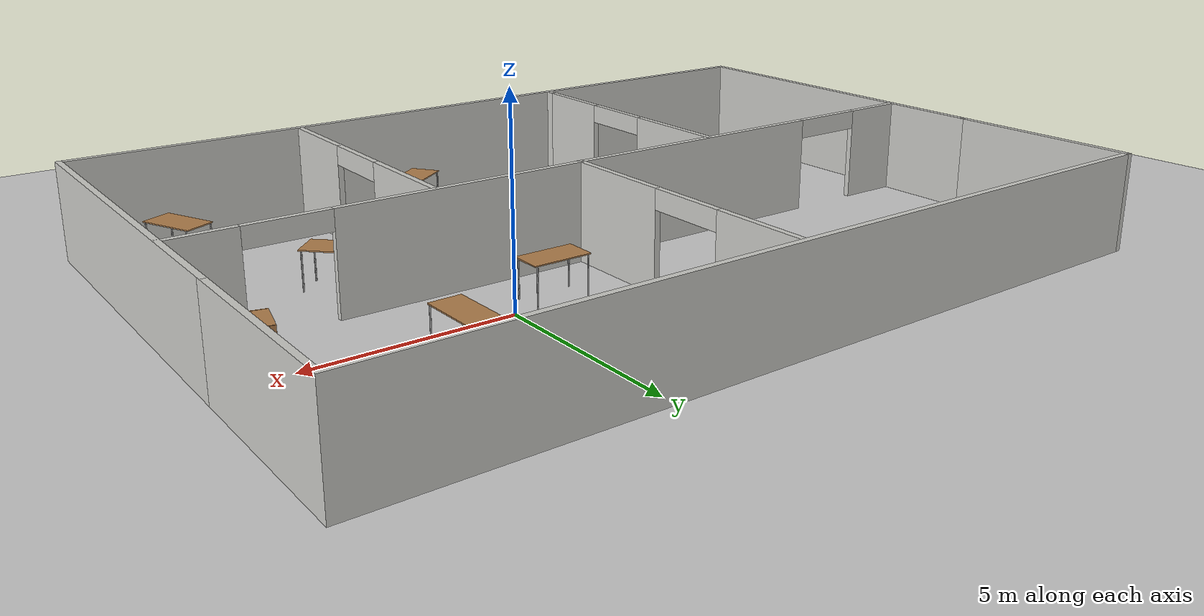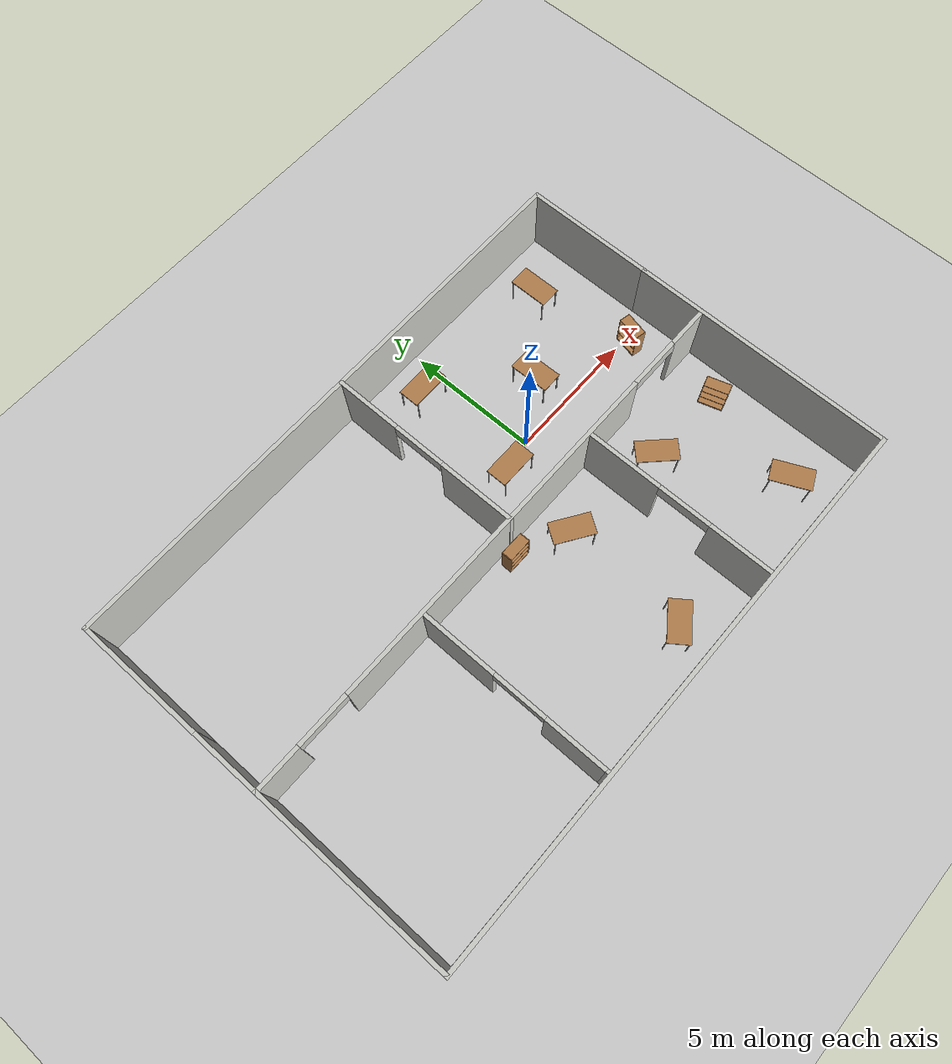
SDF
<sdf version="1.6">
 <world name="default">
  <model name="ground_plane">
   <static>1</static>
   <link name="link">
    <collision name="collision">
     <geometry><plane><normal>0 0 1</normal><size>100 100</size></plane></geometry>
     <surface>
      <contact><collide_bitmask>65535</collide_bitmask></contact>
      <friction><ode><mu>100</mu><mu2>50</mu2></ode></friction>
     </surface>
    </collision>
    <visual name="visual">
     <cast_shadows>0</cast_shadows>
     <geometry><plane><normal>0 0 1</normal><size>100 100</size></plane></geometry>
     <material>
      <script><uri>file://media/materials/scripts/gazebo.material</uri><name>Gazebo/Grey</name></script>
     </material>
    </visual>
   </link>
  </model>
  <model name="myworld">
   <pose>-3.80352 -2.02959 0 0 -0 0</pose>
   <link name="Wall_0">
    <collision name="Wall_0_Collision">
     <geometry><box><size>10 0.15 2.5</size></box></geometry>
     <pose>0 0 1.25 0 -0 0</pose>
    </collision>
    <visual name="Wall_0_Visual">
     <pose>0 0 1.25 0 -0 0</pose>
     <geometry><box><size>10 0.15 2.5</size></box></geometry>
     <material>
      <script><uri>file://media/materials/scripts/gazebo.material</uri><name>Gazebo/CeilingTiled</name></script>
      <ambient>1 1 0 1</ambient>
     </material>
     <meta><layer>0</layer></meta>
    </visual>
    <pose>-10.5499 -2.425 0 0 0 -1.5708</pose>
   </link>
   <link name="Wall_1">
    <collision name="Wall_1_Collision">
     <geometry><box><size>21.25 0.15 2.5</size></box></geometry>
     <pose>0 0 1.25 0 -0 0</pose>
    </collision>
    <visual name="Wall_1_Visual">
     <pose>0 0 1.25 0 -0 0</pose>
     <geometry><box><size>21.25 0.15 2.5</size></box></geometry>
     <material>
      <script><uri>file://media/materials/scripts/gazebo.material</uri><name>Gazebo/CeilingTiled</name></script>
      <ambient>0.333333 1 0 1</ambient>
     </material>
     <meta><layer>0</layer></meta>
    </visual>
    <pose>6.1e-05 -7.35 0 0 -0 0</pose>
   </link>
   <link name="Wall_16">
    <pose>-6.2e-05 0.001581 0 0 -0 0</pose>
    <visual name="Wall_16_Visual_0">
     <pose>-9.72617 0 1.25 0 -0 0</pose>
     <geometry><box><size>1.79767 0.15 2.5</size></box></geometry>
     <material>
      <script><uri>file://media/materials/scripts/gazebo.material</uri><name>Gazebo/CeilingTiled</name></script>
      <ambient>0 0 0 1</ambient>
     </material>
     <meta><layer>0</layer></meta>
    </visual>
    <collision name="Wall_16_Collision_0">
     <geometry><box><size>1.79767 0.15 2.5</size></box></geometry>
     <pose>-9.72617 0 1.25 0 -0 0</pose>
    </collision>
    <visual name="Wall_16_Visual_1">
     <pose>0.056227 0 1.25 0 -0 0</pose>
     <geometry><box><size>13.7671 0.15 2.5</size></box></geometry>
     <material>
      <script><uri>file://media/materials/scripts/gazebo.material</uri><name>Gazebo/CeilingTiled</name></script>
      <ambient>0 0 0 1</ambient>
     </material>
     <meta><layer>0</layer></meta>
    </visual>
    <collision name="Wall_16_Collision_1">
     <geometry><box><size>13.7671 0.15 2.5</size></box></geometry>
     <pose>0.056227 0 1.25 0 -0 0</pose>
    </collision>
    <visual name="Wall_16_Visual_2">
     <pose>9.78239 0 1.25 0 -0 0</pose>
     <geometry><box><size>1.68521 0.15 2.5</size></box></geometry>
     <material>
      <script><uri>file://media/materials/scripts/gazebo.material</uri><name>Gazebo/CeilingTiled</name></script>
      <ambient>0 0 0 1</ambient>
     </material>
     <meta><layer>0</layer></meta>
    </visual>
    <collision name="Wall_16_Collision_2">
     <geometry><box><size>1.68521 0.15 2.5</size></box></geometry>
     <pose>9.78239 0 1.25 0 -0 0</pose>
    </collision>
    <visual name="Wall_16_Visual_3">
     <pose>-7.82733 0 2.25 0 -0 0</pose>
     <geometry><box><size>2 0.15 0.5</size></box></geometry>
     <material>
      <script><uri>file://media/materials/scripts/gazebo.material</uri><name>Gazebo/CeilingTiled</name></script>
      <ambient>0 0 0 1</ambient>
     </material>
     <meta><layer>0</layer></meta>
    </visual>
    <collision name="Wall_16_Collision_3">
     <geometry><box><size>2 0.15 0.5</size></box></geometry>
     <pose>-7.82733 0 2.25 0 -0 0</pose>
    </collision>
    <visual name="Wall_16_Visual_4">
     <pose>7.93979 0 2.25 0 -0 0</pose>
     <geometry><box><size>2 0.15 0.5</size></box></geometry>
     <material>
      <script><uri>file://media/materials/scripts/gazebo.material</uri><name>Gazebo/CeilingTiled</name></script>
      <ambient>0 0 0 1</ambient>
     </material>
     <meta><layer>0</layer></meta>
    </visual>
    <collision name="Wall_16_Collision_4">
     <geometry><box><size>2 0.15 0.5</size></box></geometry>
     <pose>7.93979 0 2.25 0 -0 0</pose>
    </collision>
   </link>
   <link name="Wall_2">
    <collision name="Wall_2_Collision">
     <geometry><box><size>10 0.15 2.5</size></box></geometry>
     <pose>0 0 1.25 0 -0 0</pose>
    </collision>
    <visual name="Wall_2_Visual">
     <pose>0 0 1.25 0 -0 0</pose>
     <geometry><box><size>10 0.15 2.5</size></box></geometry>
     <material>
      <script><uri>file://media/materials/scripts/gazebo.material</uri><name>Gazebo/CeilingTiled</name></script>
      <ambient>0.333333 0.333333 1 1</ambient>
     </material>
     <meta><layer>0</layer></meta>
    </visual>
    <pose>10.5501 -2.425 0 0 -0 1.5708</pose>
   </link>
   <link name="Wall_25">
    <pose>-3.5035 -3.55368 0 0 0 -1.5708</pose>
    <visual name="Wall_25_Visual_0">
     <pose>-2.14633 0 1.25 0 -0 0</pose>
     <geometry><box><size>2.95734 0.15 2.5</size></box></geometry>
     <material>
      <script><uri>file://media/materials/scripts/gazebo.material</uri><name>Gazebo/CeilingTiled</name></script>
      <ambient>0.333333 0 0 1</ambient>
     </material>
     <meta><layer>0</layer></meta>
    </visual>
    <collision name="Wall_25_Collision_0">
     <geometry><box><size>2.95734 0.15 2.5</size></box></geometry>
     <pose>-2.14633 0 1.25 0 -0 0</pose>
    </collision>
    <visual name="Wall_25_Visual_1">
     <pose>2.47867 0 1.25 0 -0 0</pose>
     <geometry><box><size>2.29266 0.15 2.5</size></box></geometry>
     <material>
      <script><uri>file://media/materials/scripts/gazebo.material</uri><name>Gazebo/CeilingTiled</name></script>
      <ambient>0.333333 0 0 1</ambient>
     </material>
     <meta><layer>0</layer></meta>
    </visual>
    <collision name="Wall_25_Collision_1">
     <geometry><box><size>2.29266 0.15 2.5</size></box></geometry>
     <pose>2.47867 0 1.25 0 -0 0</pose>
    </collision>
    <visual name="Wall_25_Visual_2">
     <pose>0.332335 0 2.25 0 -0 0</pose>
     <geometry><box><size>2 0.15 0.5</size></box></geometry>
     <material>
      <script><uri>file://media/materials/scripts/gazebo.material</uri><name>Gazebo/CeilingTiled</name></script>
      <ambient>0.333333 0 0 1</ambient>
     </material>
     <meta><layer>0</layer></meta>
    </visual>
    <collision name="Wall_25_Collision_2">
     <geometry><box><size>2 0.15 0.5</size></box></geometry>
     <pose>0.332335 0 2.25 0 -0 0</pose>
    </collision>
   </link>
   <link name="Wall_27">
    <pose>4.49862 -3.64673 0 0 0 -1.5708</pose>
    <visual name="Wall_27_Visual_0">
     <pose>-2.19286 0 1.25 0 -0 0</pose>
     <geometry><box><size>2.86429 0.15 2.5</size></box></geometry>
     <material>
      <script><uri>file://media/materials/scripts/gazebo.material</uri><name>Gazebo/CeilingTiled</name></script>
      <ambient>0.666667 0 0.498039 1</ambient>
     </material>
     <meta><layer>0</layer></meta>
    </visual>
    <collision name="Wall_27_Collision_0">
     <geometry><box><size>2.86429 0.15 2.5</size></box></geometry>
     <pose>-2.19286 0 1.25 0 -0 0</pose>
    </collision>
    <visual name="Wall_27_Visual_1">
     <pose>2.43214 0 1.25 0 -0 0</pose>
     <geometry><box><size>2.38571 0.15 2.5</size></box></geometry>
     <material>
      <script><uri>file://media/materials/scripts/gazebo.material</uri><name>Gazebo/CeilingTiled</name></script>
      <ambient>0.666667 0 0.498039 1</ambient>
     </material>
     <meta><layer>0</layer></meta>
    </visual>
    <collision name="Wall_27_Collision_1">
     <geometry><box><size>2.38571 0.15 2.5</size></box></geometry>
     <pose>2.43214 0 1.25 0 -0 0</pose>
    </collision>
    <visual name="Wall_27_Visual_2">
     <pose>0.239287 0 2.25 0 -0 0</pose>
     <geometry><box><size>2 0.15 0.5</size></box></geometry>
     <material>
      <script><uri>file://media/materials/scripts/gazebo.material</uri><name>Gazebo/CeilingTiled</name></script>
      <ambient>0.666667 0 0.498039 1</ambient>
     </material>
     <meta><layer>0</layer></meta>
    </visual>
    <collision name="Wall_27_Collision_2">
     <geometry><box><size>2 0.15 0.5</size></box></geometry>
     <pose>0.239287 0 2.25 0 -0 0</pose>
    </collision>
   </link>
   <link name="Wall_34">
    <pose>0.552412 3.6586 0 0 -0 1.5708</pose>
    <visual name="Wall_34_Visual_0">
     <pose>-2.27068 0 1.25 0 -0 0</pose>
     <geometry><box><size>2.95863 0.15 2.5</size></box></geometry>
     <material>
      <script><uri>file://media/materials/scripts/gazebo.material</uri><name>Gazebo/CeilingTiled</name></script>
      <ambient>0 0.666667 0.498039 1</ambient>
     </material>
     <meta><layer>0</layer></meta>
    </visual>
    <collision name="Wall_34_Collision_0">
     <geometry><box><size>2.95863 0.15 2.5</size></box></geometry>
     <pose>-2.27068 0 1.25 0 -0 0</pose>
    </collision>
    <visual name="Wall_34_Visual_1">
     <pose>2.47932 0 1.25 0 -0 0</pose>
     <geometry><box><size>2.54137 0.15 2.5</size></box></geometry>
     <material>
      <script><uri>file://media/materials/scripts/gazebo.material</uri><name>Gazebo/CeilingTiled</name></script>
      <ambient>0 0.666667 0.498039 1</ambient>
     </material>
     <meta><layer>0</layer></meta>
    </visual>
    <collision name="Wall_34_Collision_1">
     <geometry><box><size>2.54137 0.15 2.5</size></box></geometry>
     <pose>2.47932 0 1.25 0 -0 0</pose>
    </collision>
    <visual name="Wall_34_Visual_2">
     <pose>0.208629 0 2.25 0 -0 0</pose>
     <geometry><box><size>2 0.15 0.5</size></box></geometry>
     <material>
      <script><uri>file://media/materials/scripts/gazebo.material</uri><name>Gazebo/CeilingTiled</name></script>
      <ambient>0 0.666667 0.498039 1</ambient>
     </material>
     <meta><layer>0</layer></meta>
    </visual>
    <collision name="Wall_34_Collision_2">
     <geometry><box><size>2 0.15 0.5</size></box></geometry>
     <pose>0.208629 0 2.25 0 -0 0</pose>
    </collision>
   </link>
   <link name="Wall_36">
    <collision name="Wall_36_Collision">
     <geometry><box><size>0.25 0.15 2.5</size></box></geometry>
     <pose>0 0 1.25 0 -0 0</pose>
    </collision>
    <visual name="Wall_36_Visual">
     <pose>0 0 1.25 0 -0 0</pose>
     <geometry><box><size>0.25 0.15 2.5</size></box></geometry>
     <material>
      <script><uri>file://media/materials/scripts/gazebo.material</uri><name>Gazebo/CeilingTiled</name></script>
      <ambient>1 1 1 1</ambient>
     </material>
     <meta><layer>0</layer></meta>
    </visual>
    <pose>-3.5035 -7.15368 0 0 0 -1.5708</pose>
   </link>
   <link name="Wall_5">
    <collision name="Wall_5_Collision">
     <geometry><box><size>5 0.15 2.5</size></box></geometry>
     <pose>0 0 1.25 0 -0 0</pose>
    </collision>
    <visual name="Wall_5_Visual">
     <pose>0 0 1.25 0 -0 0</pose>
     <geometry><box><size>5 0.15 2.5</size></box></geometry>
     <material>
      <script><uri>file://media/materials/scripts/gazebo.material</uri><name>Gazebo/CeilingTiled</name></script>
      <ambient>1 1 0 1</ambient>
     </material>
     <meta><layer>0</layer></meta>
    </visual>
    <pose>-10.5499 4.925 0 0 -0 1.5708</pose>
   </link>
   <link name="Wall_6">
    <collision name="Wall_6_Collision">
     <geometry><box><size>21.25 0.15 2.5</size></box></geometry>
     <pose>0 0 1.25 0 -0 0</pose>
    </collision>
    <visual name="Wall_6_Visual">
     <pose>0 0 1.25 0 -0 0</pose>
     <geometry><box><size>21.25 0.15 2.5</size></box></geometry>
     <material>
      <script><uri>file://media/materials/scripts/gazebo.material</uri><name>Gazebo/CeilingTiled</name></script>
      <ambient>1 0 0 1</ambient>
     </material>
     <meta><layer>0</layer></meta>
    </visual>
    <pose>6.1e-05 7.35 0 0 -0 0</pose>
   </link>
   <link name="Wall_7">
    <collision name="Wall_7_Collision">
     <geometry><box><size>5 0.15 2.5</size></box></geometry>
     <pose>0 0 1.25 0 -0 0</pose>
    </collision>
    <visual name="Wall_7_Visual">
     <pose>0 0 1.25 0 -0 0</pose>
     <geometry><box><size>5 0.15 2.5</size></box></geometry>
     <material>
      <script><uri>file://media/materials/scripts/gazebo.material</uri><name>Gazebo/CeilingTiled</name></script>
      <ambient>0.333333 0.333333 1 1</ambient>
     </material>
     <meta><layer>0</layer></meta>
    </visual>
    <pose>10.5501 4.925 0 0 0 -1.5708</pose>
   </link>
   <static>1</static>
  </model>
  <model name="table_3">
   <static>1</static>
   <link name="link">
    <collision name="surface">
     <pose>0 0 1 0 -0 0</pose>
     <geometry><box><size>1.5 0.8 0.03</size></box></geometry>
     <surface><friction><ode><mu>0.6</mu><mu2>0.6</mu2></ode></friction></surface>
    </collision>
    <visual name="visual1">
     <pose>0 0 1 0 -0 0</pose>
     <geometry><box><size>1.5 0.8 0.03</size></box></geometry>
     <material>
      <script><uri>file://media/materials/scripts/gazebo.material</uri><name>Gazebo/Wood</name></script>
     </material>
    </visual>
    <collision name="front_left_leg">
     <pose>0.68 0.38 0.5 0 -0 0</pose>
     <geometry><cylinder><radius>0.02</radius><length>1</length></cylinder></geometry>
    </collision>
    <visual name="front_left_leg">
     <pose>0.68 0.38 0.5 0 -0 0</pose>
     <geometry><cylinder><radius>0.02</radius><length>1</length></cylinder></geometry>
     <material>
      <script><uri>file://media/materials/scripts/gazebo.material</uri><name>Gazebo/Grey</name></script>
     </material>
    </visual>
    <collision name="front_right_leg">
     <pose>0.68 -0.38 0.5 0 -0 0</pose>
     <geometry><cylinder><radius>0.02</radius><length>1</length></cylinder></geometry>
    </collision>
    <visual name="front_right_leg">
     <pose>0.68 -0.38 0.5 0 -0 0</pose>
     <geometry><cylinder><radius>0.02</radius><length>1</length></cylinder></geometry>
     <material>
      <script><uri>file://media/materials/scripts/gazebo.material</uri><name>Gazebo/Grey</name></script>
     </material>
    </visual>
    <collision name="back_right_leg">
     <pose>-0.68 -0.38 0.5 0 -0 0</pose>
     <geometry><cylinder><radius>0.02</radius><length>1</length></cylinder></geometry>
    </collision>
    <visual name="back_right_leg">
     <pose>-0.68 -0.38 0.5 0 -0 0</pose>
     <geometry><cylinder><radius>0.02</radius><length>1</length></cylinder></geometry>
     <material>
      <script><uri>file://media/materials/scripts/gazebo.material</uri><name>Gazebo/Grey</name></script>
     </material>
    </visual>
    <collision name="back_left_leg">
     <pose>-0.68 0.38 0.5 0 -0 0</pose>
     <geometry><cylinder><radius>0.02</radius><length>1</length></cylinder></geometry>
    </collision>
    <visual name="back_left_leg">
     <pose>-0.68 0.38 0.5 0 -0 0</pose>
     <geometry><cylinder><radius>0.02</radius><length>1</length></cylinder></geometry>
     <material>
      <script><uri>file://media/materials/scripts/gazebo.material</uri><name>Gazebo/Grey</name></script>
     </material>
    </visual>
   </link>
   <pose>4.58009 3.52405 0 0 0 -1.56695</pose>
  </model>
  <model name="table_4">
   <static>1</static>
   <link name="link">
    <collision name="surface">
     <pose>0 0 1 0 -0 0</pose>
     <geometry><box><size>1.5 0.8 0.03</size></box></geometry>
     <surface><friction><ode><mu>0.6</mu><mu2>0.6</mu2></ode></friction></surface>
    </collision>
    <visual name="visual1">
     <pose>0 0 1 0 -0 0</pose>
     <geometry><box><size>1.5 0.8 0.03</size></box></geometry>
     <material>
      <script><uri>file://media/materials/scripts/gazebo.material</uri><name>Gazebo/Wood</name></script>
     </material>
    </visual>
    <collision name="front_left_leg">
     <pose>0.68 0.38 0.5 0 -0 0</pose>
     <geometry><cylinder><radius>0.02</radius><length>1</length></cylinder></geometry>
    </collision>
    <visual name="front_left_leg">
     <pose>0.68 0.38 0.5 0 -0 0</pose>
     <geometry><cylinder><radius>0.02</radius><length>1</length></cylinder></geometry>
     <material>
      <script><uri>file://media/materials/scripts/gazebo.material</uri><name>Gazebo/Grey</name></script>
     </material>
    </visual>
    <collision name="front_right_leg">
     <pose>0.68 -0.38 0.5 0 -0 0</pose>
     <geometry><cylinder><radius>0.02</radius><length>1</length></cylinder></geometry>
    </collision>
    <visual name="front_right_leg">
     <pose>0.68 -0.38 0.5 0 -0 0</pose>
     <geometry><cylinder><radius>0.02</radius><length>1</length></cylinder></geometry>
     <material>
      <script><uri>file://media/materials/scripts/gazebo.material</uri><name>Gazebo/Grey</name></script>
     </material>
    </visual>
    <collision name="back_right_leg">
     <pose>-0.68 -0.38 0.5 0 -0 0</pose>
     <geometry><cylinder><radius>0.02</radius><length>1</length></cylinder></geometry>
    </collision>
    <visual name="back_right_leg">
     <pose>-0.68 -0.38 0.5 0 -0 0</pose>
     <geometry><cylinder><radius>0.02</radius><length>1</length></cylinder></geometry>
     <material>
      <script><uri>file://media/materials/scripts/gazebo.material</uri><name>Gazebo/Grey</name></script>
     </material>
    </visual>
    <collision name="back_left_leg">
     <pose>-0.68 0.38 0.5 0 -0 0</pose>
     <geometry><cylinder><radius>0.02</radius><length>1</length></cylinder></geometry>
    </collision>
    <visual name="back_left_leg">
     <pose>-0.68 0.38 0.5 0 -0 0</pose>
     <geometry><cylinder><radius>0.02</radius><length>1</length></cylinder></geometry>
     <material>
      <script><uri>file://media/materials/scripts/gazebo.material</uri><name>Gazebo/Grey</name></script>
     </material>
    </visual>
   </link>
   <pose>1.974 1.27026 0 0 0 -1.54787</pose>
  </model>
  <model name="table_5">
   <static>1</static>
   <link name="link">
    <collision name="surface">
     <pose>0 0 1 0 -0 0</pose>
     <geometry><box><size>1.5 0.8 0.03</size></box></geometry>
     <surface><friction><ode><mu>0.6</mu><mu2>0.6</mu2></ode></friction></surface>
    </collision>
    <visual name="visual1">
     <pose>0 0 1 0 -0 0</pose>
     <geometry><box><size>1.5 0.8 0.03</size></box></geometry>
     <material>
      <script><uri>file://media/materials/scripts/gazebo.material</uri><name>Gazebo/Wood</name></script>
     </material>
    </visual>
    <collision name="front_left_leg">
     <pose>0.68 0.38 0.5 0 -0 0</pose>
     <geometry><cylinder><radius>0.02</radius><length>1</length></cylinder></geometry>
    </collision>
    <visual name="front_left_leg">
     <pose>0.68 0.38 0.5 0 -0 0</pose>
     <geometry><cylinder><radius>0.02</radius><length>1</length></cylinder></geometry>
     <material>
      <script><uri>file://media/materials/scripts/gazebo.material</uri><name>Gazebo/Grey</name></script>
     </material>
    </visual>
    <collision name="front_right_leg">
     <pose>0.68 -0.38 0.5 0 -0 0</pose>
     <geometry><cylinder><radius>0.02</radius><length>1</length></cylinder></geometry>
    </collision>
    <visual name="front_right_leg">
     <pose>0.68 -0.38 0.5 0 -0 0</pose>
     <geometry><cylinder><radius>0.02</radius><length>1</length></cylinder></geometry>
     <material>
      <script><uri>file://media/materials/scripts/gazebo.material</uri><name>Gazebo/Grey</name></script>
     </material>
    </visual>
    <collision name="back_right_leg">
     <pose>-0.68 -0.38 0.5 0 -0 0</pose>
     <geometry><cylinder><radius>0.02</radius><length>1</length></cylinder></geometry>
    </collision>
    <visual name="back_right_leg">
     <pose>-0.68 -0.38 0.5 0 -0 0</pose>
     <geometry><cylinder><radius>0.02</radius><length>1</length></cylinder></geometry>
     <material>
      <script><uri>file://media/materials/scripts/gazebo.material</uri><name>Gazebo/Grey</name></script>
     </material>
    </visual>
    <collision name="back_left_leg">
     <pose>-0.68 0.38 0.5 0 -0 0</pose>
     <geometry><cylinder><radius>0.02</radius><length>1</length></cylinder></geometry>
    </collision>
    <visual name="back_left_leg">
     <pose>-0.68 0.38 0.5 0 -0 0</pose>
     <geometry><cylinder><radius>0.02</radius><length>1</length></cylinder></geometry>
     <material>
      <script><uri>file://media/materials/scripts/gazebo.material</uri><name>Gazebo/Grey</name></script>
     </material>
    </visual>
   </link>
   <pose>-1.27098 -0.368858 0 0 -0 0</pose>
  </model>
  <model name="table_6">
   <static>1</static>
   <link name="link">
    <collision name="surface">
     <pose>0 0 1 0 -0 0</pose>
     <geometry><box><size>1.5 0.8 0.03</size></box></geometry>
     <surface><friction><ode><mu>0.6</mu><mu2>0.6</mu2></ode></friction></surface>
    </collision>
    <visual name="visual1">
     <pose>0 0 1 0 -0 0</pose>
     <geometry><box><size>1.5 0.8 0.03</size></box></geometry>
     <material>
      <script><uri>file://media/materials/scripts/gazebo.material</uri><name>Gazebo/Wood</name></script>
     </material>
    </visual>
    <collision name="front_left_leg">
     <pose>0.68 0.38 0.5 0 -0 0</pose>
     <geometry><cylinder><radius>0.02</radius><length>1</length></cylinder></geometry>
    </collision>
    <visual name="front_left_leg">
     <pose>0.68 0.38 0.5 0 -0 0</pose>
     <geometry><cylinder><radius>0.02</radius><length>1</length></cylinder></geometry>
     <material>
      <script><uri>file://media/materials/scripts/gazebo.material</uri><name>Gazebo/Grey</name></script>
     </material>
    </visual>
    <collision name="front_right_leg">
     <pose>0.68 -0.38 0.5 0 -0 0</pose>
     <geometry><cylinder><radius>0.02</radius><length>1</length></cylinder></geometry>
    </collision>
    <visual name="front_right_leg">
     <pose>0.68 -0.38 0.5 0 -0 0</pose>
     <geometry><cylinder><radius>0.02</radius><length>1</length></cylinder></geometry>
     <material>
      <script><uri>file://media/materials/scripts/gazebo.material</uri><name>Gazebo/Grey</name></script>
     </material>
    </visual>
    <collision name="back_right_leg">
     <pose>-0.68 -0.38 0.5 0 -0 0</pose>
     <geometry><cylinder><radius>0.02</radius><length>1</length></cylinder></geometry>
    </collision>
    <visual name="back_right_leg">
     <pose>-0.68 -0.38 0.5 0 -0 0</pose>
     <geometry><cylinder><radius>0.02</radius><length>1</length></cylinder></geometry>
     <material>
      <script><uri>file://media/materials/scripts/gazebo.material</uri><name>Gazebo/Grey</name></script>
     </material>
    </visual>
    <collision name="back_left_leg">
     <pose>-0.68 0.38 0.5 0 -0 0</pose>
     <geometry><cylinder><radius>0.02</radius><length>1</length></cylinder></geometry>
    </collision>
    <visual name="back_left_leg">
     <pose>-0.68 0.38 0.5 0 -0 0</pose>
     <geometry><cylinder><radius>0.02</radius><length>1</length></cylinder></geometry>
     <material>
      <script><uri>file://media/materials/scripts/gazebo.material</uri><name>Gazebo/Grey</name></script>
     </material>
    </visual>
   </link>
   <pose>-1.00285 3.87071 0 0 -0 0</pose>
  </model>
  <model name="table_7">
   <static>1</static>
   <link name="link">
    <collision name="surface">
     <pose>0 0 1 0 -0 0</pose>
     <geometry><box><size>1.5 0.8 0.03</size></box></geometry>
     <surface><friction><ode><mu>0.6</mu><mu2>0.6</mu2></ode></friction></surface>
    </collision>
    <visual name="visual1">
     <pose>0 0 1 0 -0 0</pose>
     <geometry><box><size>1.5 0.8 0.03</size></box></geometry>
     <material>
      <script><uri>file://media/materials/scripts/gazebo.material</uri><name>Gazebo/Wood</name></script>
     </material>
    </visual>
    <collision name="front_left_leg">
     <pose>0.68 0.38 0.5 0 -0 0</pose>
     <geometry><cylinder><radius>0.02</radius><length>1</length></cylinder></geometry>
    </collision>
    <visual name="front_left_leg">
     <pose>0.68 0.38 0.5 0 -0 0</pose>
     <geometry><cylinder><radius>0.02</radius><length>1</length></cylinder></geometry>
     <material>
      <script><uri>file://media/materials/scripts/gazebo.material</uri><name>Gazebo/Grey</name></script>
     </material>
    </visual>
    <collision name="front_right_leg">
     <pose>0.68 -0.38 0.5 0 -0 0</pose>
     <geometry><cylinder><radius>0.02</radius><length>1</length></cylinder></geometry>
    </collision>
    <visual name="front_right_leg">
     <pose>0.68 -0.38 0.5 0 -0 0</pose>
     <geometry><cylinder><radius>0.02</radius><length>1</length></cylinder></geometry>
     <material>
      <script><uri>file://media/materials/scripts/gazebo.material</uri><name>Gazebo/Grey</name></script>
     </material>
    </visual>
    <collision name="back_right_leg">
     <pose>-0.68 -0.38 0.5 0 -0 0</pose>
     <geometry><cylinder><radius>0.02</radius><length>1</length></cylinder></geometry>
    </collision>
    <visual name="back_right_leg">
     <pose>-0.68 -0.38 0.5 0 -0 0</pose>
     <geometry><cylinder><radius>0.02</radius><length>1</length></cylinder></geometry>
     <material>
      <script><uri>file://media/materials/scripts/gazebo.material</uri><name>Gazebo/Grey</name></script>
     </material>
    </visual>
    <collision name="back_left_leg">
     <pose>-0.68 0.38 0.5 0 -0 0</pose>
     <geometry><cylinder><radius>0.02</radius><length>1</length></cylinder></geometry>
    </collision>
    <visual name="back_left_leg">
     <pose>-0.68 0.38 0.5 0 -0 0</pose>
     <geometry><cylinder><radius>0.02</radius><length>1</length></cylinder></geometry>
     <material>
      <script><uri>file://media/materials/scripts/gazebo.material</uri><name>Gazebo/Grey</name></script>
     </material>
    </visual>
   </link>
   <pose>4.59885 -7.78455 0 0 0 -1.14277</pose>
  </model>
  <model name="table_8">
   <static>1</static>
   <link name="link">
    <collision name="surface">
     <pose>0 0 1 0 -0 0</pose>
     <geometry><box><size>1.5 0.8 0.03</size></box></geometry>
     <surface><friction><ode><mu>0.6</mu><mu2>0.6</mu2></ode></friction></surface>
    </collision>
    <visual name="visual1">
     <pose>0 0 1 0 -0 0</pose>
     <geometry><box><size>1.5 0.8 0.03</size></box></geometry>
     <material>
      <script><uri>file://media/materials/scripts/gazebo.material</uri><name>Gazebo/Wood</name></script>
     </material>
    </visual>
    <collision name="front_left_leg">
     <pose>0.68 0.38 0.5 0 -0 0</pose>
     <geometry><cylinder><radius>0.02</radius><length>1</length></cylinder></geometry>
    </collision>
    <visual name="front_left_leg">
     <pose>0.68 0.38 0.5 0 -0 0</pose>
     <geometry><cylinder><radius>0.02</radius><length>1</length></cylinder></geometry>
     <material>
      <script><uri>file://media/materials/scripts/gazebo.material</uri><name>Gazebo/Grey</name></script>
     </material>
    </visual>
    <collision name="front_right_leg">
     <pose>0.68 -0.38 0.5 0 -0 0</pose>
     <geometry><cylinder><radius>0.02</radius><length>1</length></cylinder></geometry>
    </collision>
    <visual name="front_right_leg">
     <pose>0.68 -0.38 0.5 0 -0 0</pose>
     <geometry><cylinder><radius>0.02</radius><length>1</length></cylinder></geometry>
     <material>
      <script><uri>file://media/materials/scripts/gazebo.material</uri><name>Gazebo/Grey</name></script>
     </material>
    </visual>
    <collision name="back_right_leg">
     <pose>-0.68 -0.38 0.5 0 -0 0</pose>
     <geometry><cylinder><radius>0.02</radius><length>1</length></cylinder></geometry>
    </collision>
    <visual name="back_right_leg">
     <pose>-0.68 -0.38 0.5 0 -0 0</pose>
     <geometry><cylinder><radius>0.02</radius><length>1</length></cylinder></geometry>
     <material>
      <script><uri>file://media/materials/scripts/gazebo.material</uri><name>Gazebo/Grey</name></script>
     </material>
    </visual>
    <collision name="back_left_leg">
     <pose>-0.68 0.38 0.5 0 -0 0</pose>
     <geometry><cylinder><radius>0.02</radius><length>1</length></cylinder></geometry>
    </collision>
    <visual name="back_left_leg">
     <pose>-0.68 0.38 0.5 0 -0 0</pose>
     <geometry><cylinder><radius>0.02</radius><length>1</length></cylinder></geometry>
     <material>
      <script><uri>file://media/materials/scripts/gazebo.material</uri><name>Gazebo/Grey</name></script>
     </material>
    </visual>
   </link>
   <pose>2.33112 -3.81013 0 0 0 -0.789334</pose>
  </model>
  <model name="table_10">
   <static>1</static>
   <link name="link">
    <collision name="surface">
     <pose>0 0 1 0 -0 0</pose>
     <geometry><box><size>1.5 0.8 0.03</size></box></geometry>
     <surface><friction><ode><mu>0.6</mu><mu2>0.6</mu2></ode></friction></surface>
    </collision>
    <visual name="visual1">
     <pose>0 0 1 0 -0 0</pose>
     <geometry><box><size>1.5 0.8 0.03</size></box></geometry>
     <material>
      <script><uri>file://media/materials/scripts/gazebo.material</uri><name>Gazebo/Wood</name></script>
     </material>
    </visual>
    <collision name="front_left_leg">
     <pose>0.68 0.38 0.5 0 -0 0</pose>
     <geometry><cylinder><radius>0.02</radius><length>1</length></cylinder></geometry>
    </collision>
    <visual name="front_left_leg">
     <pose>0.68 0.38 0.5 0 -0 0</pose>
     <geometry><cylinder><radius>0.02</radius><length>1</length></cylinder></geometry>
     <material>
      <script><uri>file://media/materials/scripts/gazebo.material</uri><name>Gazebo/Grey</name></script>
     </material>
    </visual>
    <collision name="front_right_leg">
     <pose>0.68 -0.38 0.5 0 -0 0</pose>
     <geometry><cylinder><radius>0.02</radius><length>1</length></cylinder></geometry>
    </collision>
    <visual name="front_right_leg">
     <pose>0.68 -0.38 0.5 0 -0 0</pose>
     <geometry><cylinder><radius>0.02</radius><length>1</length></cylinder></geometry>
     <material>
      <script><uri>file://media/materials/scripts/gazebo.material</uri><name>Gazebo/Grey</name></script>
     </material>
    </visual>
    <collision name="back_right_leg">
     <pose>-0.68 -0.38 0.5 0 -0 0</pose>
     <geometry><cylinder><radius>0.02</radius><length>1</length></cylinder></geometry>
    </collision>
    <visual name="back_right_leg">
     <pose>-0.68 -0.38 0.5 0 -0 0</pose>
     <geometry><cylinder><radius>0.02</radius><length>1</length></cylinder></geometry>
     <material>
      <script><uri>file://media/materials/scripts/gazebo.material</uri><name>Gazebo/Grey</name></script>
     </material>
    </visual>
    <collision name="back_left_leg">
     <pose>-0.68 0.38 0.5 0 -0 0</pose>
     <geometry><cylinder><radius>0.02</radius><length>1</length></cylinder></geometry>
    </collision>
    <visual name="back_left_leg">
     <pose>-0.68 0.38 0.5 0 -0 0</pose>
     <geometry><cylinder><radius>0.02</radius><length>1</length></cylinder></geometry>
     <material>
      <script><uri>file://media/materials/scripts/gazebo.material</uri><name>Gazebo/Grey</name></script>
     </material>
    </visual>
   </link>
   <pose>-1.71828 -3.43286 0 0 0 -0.587265</pose>
  </model>
  <model name="table_11">
   <static>1</static>
   <link name="link">
    <collision name="surface">
     <pose>0 0 1 0 -0 0</pose>
     <geometry><box><size>1.5 0.8 0.03</size></box></geometry>
     <surface><friction><ode><mu>0.6</mu><mu2>0.6</mu2></ode></friction></surface>
    </collision>
    <visual name="visual1">
     <pose>0 0 1 0 -0 0</pose>
     <geometry><box><size>1.5 0.8 0.03</size></box></geometry>
     <material>
      <script><uri>file://media/materials/scripts/gazebo.material</uri><name>Gazebo/Wood</name></script>
     </material>
    </visual>
    <collision name="front_left_leg">
     <pose>0.68 0.38 0.5 0 -0 0</pose>
     <geometry><cylinder><radius>0.02</radius><length>1</length></cylinder></geometry>
    </collision>
    <visual name="front_left_leg">
     <pose>0.68 0.38 0.5 0 -0 0</pose>
     <geometry><cylinder><radius>0.02</radius><length>1</length></cylinder></geometry>
     <material>
      <script><uri>file://media/materials/scripts/gazebo.material</uri><name>Gazebo/Grey</name></script>
     </material>
    </visual>
    <collision name="front_right_leg">
     <pose>0.68 -0.38 0.5 0 -0 0</pose>
     <geometry><cylinder><radius>0.02</radius><length>1</length></cylinder></geometry>
    </collision>
    <visual name="front_right_leg">
     <pose>0.68 -0.38 0.5 0 -0 0</pose>
     <geometry><cylinder><radius>0.02</radius><length>1</length></cylinder></geometry>
     <material>
      <script><uri>file://media/materials/scripts/gazebo.material</uri><name>Gazebo/Grey</name></script>
     </material>
    </visual>
    <collision name="back_right_leg">
     <pose>-0.68 -0.38 0.5 0 -0 0</pose>
     <geometry><cylinder><radius>0.02</radius><length>1</length></cylinder></geometry>
    </collision>
    <visual name="back_right_leg">
     <pose>-0.68 -0.38 0.5 0 -0 0</pose>
     <geometry><cylinder><radius>0.02</radius><length>1</length></cylinder></geometry>
     <material>
      <script><uri>file://media/materials/scripts/gazebo.material</uri><name>Gazebo/Grey</name></script>
     </material>
    </visual>
    <collision name="back_left_leg">
     <pose>-0.68 0.38 0.5 0 -0 0</pose>
     <geometry><cylinder><radius>0.02</radius><length>1</length></cylinder></geometry>
    </collision>
    <visual name="back_left_leg">
     <pose>-0.68 0.38 0.5 0 -0 0</pose>
     <geometry><cylinder><radius>0.02</radius><length>1</length></cylinder></geometry>
     <material>
      <script><uri>file://media/materials/scripts/gazebo.material</uri><name>Gazebo/Grey</name></script>
     </material>
    </visual>
   </link>
   <pose>-1.91844 -8.03131 0 0 -0 0.627805</pose>
  </model>
  <model name="bookshelf_0">
   <static>1</static>
   <link name="link">
    <inertial><mass>1</mass></inertial>
    <collision name="back">
     <pose>0 0.005 0.6 0 -0 0</pose>
     <geometry><box><size>0.9 0.01 1.2</size></box></geometry>
    </collision>
    <visual name="visual1">
     <pose>0 0.005 0.6 0 -0 0</pose>
     <geometry><box><size>0.9 0.01 1.2</size></box></geometry>
     <material>
      <script><uri>file://media/materials/scripts/gazebo.material</uri><name>Gazebo/Wood</name></script>
     </material>
    </visual>
    <collision name="left_side">
     <pose>0.45 -0.195 0.6 0 -0 0</pose>
     <geometry><box><size>0.02 0.4 1.2</size></box></geometry>
    </collision>
    <visual name="visual2">
     <pose>0.45 -0.195 0.6 0 -0 0</pose>
     <geometry><box><size>0.02 0.4 1.2</size></box></geometry>
     <material>
      <script><uri>file://media/materials/scripts/gazebo.material</uri><name>Gazebo/Wood</name></script>
     </material>
    </visual>
    <collision name="right_side">
     <pose>-0.45 -0.195 0.6 0 -0 0</pose>
     <geometry><box><size>0.02 0.4 1.2</size></box></geometry>
    </collision>
    <visual name="visual3">
     <pose>-0.45 -0.195 0.6 0 -0 0</pose>
     <geometry><box><size>0.02 0.4 1.2</size></box></geometry>
     <material>
      <script><uri>file://media/materials/scripts/gazebo.material</uri><name>Gazebo/Wood</name></script>
     </material>
    </visual>
    <collision name="bottom">
     <pose>0 -0.195 0.03 0 -0 0</pose>
     <geometry><box><size>0.88 0.4 0.06</size></box></geometry>
    </collision>
    <visual name="visual4">
     <pose>0 -0.195 0.03 0 -0 0</pose>
     <geometry><box><size>0.88 0.4 0.06</size></box></geometry>
     <material>
      <script><uri>file://media/materials/scripts/gazebo.material</uri><name>Gazebo/Wood</name></script>
     </material>
    </visual>
    <collision name="top">
     <pose>0 -0.195 1.19 0 -0 0</pose>
     <geometry><box><size>0.88 0.4 0.02</size></box></geometry>
    </collision>
    <visual name="visual5">
     <pose>0 -0.195 1.19 0 -0 0</pose>
     <geometry><box><size>0.88 0.4 0.02</size></box></geometry>
     <material>
      <script><uri>file://media/materials/scripts/gazebo.material</uri><name>Gazebo/Wood</name></script>
     </material>
    </visual>
    <collision name="low_shelf">
     <pose>0 -0.195 0.43 0 -0 0</pose>
     <geometry><box><size>0.88 0.4 0.02</size></box></geometry>
    </collision>
    <visual name="visual6">
     <pose>0 -0.195 0.43 0 -0 0</pose>
     <geometry><box><size>0.88 0.4 0.02</size></box></geometry>
     <material>
      <script><uri>file://media/materials/scripts/gazebo.material</uri><name>Gazebo/Wood</name></script>
     </material>
    </visual>
    <collision name="high_shelf">
     <pose>0 -0.195 0.8 0 -0 0</pose>
     <geometry><box><size>0.88 0.4 0.02</size></box></geometry>
    </collision>
    <visual name="visual7">
     <pose>0 -0.195 0.8 0 -0 0</pose>
     <geometry><box><size>0.88 0.4 0.02</size></box></geometry>
     <material>
      <script><uri>file://media/materials/scripts/gazebo.material</uri><name>Gazebo/Wood</name></script>
     </material>
    </visual>
   </link>
   <pose>5.67793 -0.274401 0 0 0 -1.79708</pose>
  </model>
  <model name="bookshelf_1">
   <static>1</static>
   <link name="link">
    <inertial><mass>1</mass></inertial>
    <collision name="back">
     <pose>0 0.005 0.6 0 -0 0</pose>
     <geometry><box><size>0.9 0.01 1.2</size></box></geometry>
    </collision>
    <visual name="visual1">
     <pose>0 0.005 0.6 0 -0 0</pose>
     <geometry><box><size>0.9 0.01 1.2</size></box></geometry>
     <material>
      <script><uri>file://media/materials/scripts/gazebo.material</uri><name>Gazebo/Wood</name></script>
     </material>
    </visual>
    <collision name="left_side">
     <pose>0.45 -0.195 0.6 0 -0 0</pose>
     <geometry><box><size>0.02 0.4 1.2</size></box></geometry>
    </collision>
    <visual name="visual2">
     <pose>0.45 -0.195 0.6 0 -0 0</pose>
     <geometry><box><size>0.02 0.4 1.2</size></box></geometry>
     <material>
      <script><uri>file://media/materials/scripts/gazebo.material</uri><name>Gazebo/Wood</name></script>
     </material>
    </visual>
    <collision name="right_side">
     <pose>-0.45 -0.195 0.6 0 -0 0</pose>
     <geometry><box><size>0.02 0.4 1.2</size></box></geometry>
    </collision>
    <visual name="visual3">
     <pose>-0.45 -0.195 0.6 0 -0 0</pose>
     <geometry><box><size>0.02 0.4 1.2</size></box></geometry>
     <material>
      <script><uri>file://media/materials/scripts/gazebo.material</uri><name>Gazebo/Wood</name></script>
     </material>
    </visual>
    <collision name="bottom">
     <pose>0 -0.195 0.03 0 -0 0</pose>
     <geometry><box><size>0.88 0.4 0.06</size></box></geometry>
    </collision>
    <visual name="visual4">
     <pose>0 -0.195 0.03 0 -0 0</pose>
     <geometry><box><size>0.88 0.4 0.06</size></box></geometry>
     <material>
      <script><uri>file://media/materials/scripts/gazebo.material</uri><name>Gazebo/Wood</name></script>
     </material>
    </visual>
    <collision name="top">
     <pose>0 -0.195 1.19 0 -0 0</pose>
     <geometry><box><size>0.88 0.4 0.02</size></box></geometry>
    </collision>
    <visual name="visual5">
     <pose>0 -0.195 1.19 0 -0 0</pose>
     <geometry><box><size>0.88 0.4 0.02</size></box></geometry>
     <material>
      <script><uri>file://media/materials/scripts/gazebo.material</uri><name>Gazebo/Wood</name></script>
     </material>
    </visual>
    <collision name="low_shelf">
     <pose>0 -0.195 0.43 0 -0 0</pose>
     <geometry><box><size>0.88 0.4 0.02</size></box></geometry>
    </collision>
    <visual name="visual6">
     <pose>0 -0.195 0.43 0 -0 0</pose>
     <geometry><box><size>0.88 0.4 0.02</size></box></geometry>
     <material>
      <script><uri>file://media/materials/scripts/gazebo.material</uri><name>Gazebo/Wood</name></script>
     </material>
    </visual>
    <collision name="high_shelf">
     <pose>0 -0.195 0.8 0 -0 0</pose>
     <geometry><box><size>0.88 0.4 0.02</size></box></geometry>
    </collision>
    <visual name="visual7">
     <pose>0 -0.195 0.8 0 -0 0</pose>
     <geometry><box><size>0.88 0.4 0.02</size></box></geometry>
     <material>
      <script><uri>file://media/materials/scripts/gazebo.material</uri><name>Gazebo/Wood</name></script>
     </material>
    </visual>
   </link>
   <pose>5.75721 -3.85052 0 0 0 -1.26921</pose>
  </model>
  <model name="bookshelf_2">
   <static>1</static>
   <link name="link">
    <inertial><mass>1</mass></inertial>
    <collision name="back">
     <pose>0 0.005 0.6 0 -0 0</pose>
     <geometry><box><size>0.9 0.01 1.2</size></box></geometry>
    </collision>
    <visual name="visual1">
     <pose>0 0.005 0.6 0 -0 0</pose>
     <geometry><box><size>0.9 0.01 1.2</size></box></geometry>
     <material>
      <script><uri>file://media/materials/scripts/gazebo.material</uri><name>Gazebo/Wood</name></script>
     </material>
    </visual>
    <collision name="left_side">
     <pose>0.45 -0.195 0.6 0 -0 0</pose>
     <geometry><box><size>0.02 0.4 1.2</size></box></geometry>
    </collision>
    <visual name="visual2">
     <pose>0.45 -0.195 0.6 0 -0 0</pose>
     <geometry><box><size>0.02 0.4 1.2</size></box></geometry>
     <material>
      <script><uri>file://media/materials/scripts/gazebo.material</uri><name>Gazebo/Wood</name></script>
     </material>
    </visual>
    <collision name="right_side">
     <pose>-0.45 -0.195 0.6 0 -0 0</pose>
     <geometry><box><size>0.02 0.4 1.2</size></box></geometry>
    </collision>
    <visual name="visual3">
     <pose>-0.45 -0.195 0.6 0 -0 0</pose>
     <geometry><box><size>0.02 0.4 1.2</size></box></geometry>
     <material>
      <script><uri>file://media/materials/scripts/gazebo.material</uri><name>Gazebo/Wood</name></script>
     </material>
    </visual>
    <collision name="bottom">
     <pose>0 -0.195 0.03 0 -0 0</pose>
     <geometry><box><size>0.88 0.4 0.06</size></box></geometry>
    </collision>
    <visual name="visual4">
     <pose>0 -0.195 0.03 0 -0 0</pose>
     <geometry><box><size>0.88 0.4 0.06</size></box></geometry>
     <material>
      <script><uri>file://media/materials/scripts/gazebo.material</uri><name>Gazebo/Wood</name></script>
     </material>
    </visual>
    <collision name="top">
     <pose>0 -0.195 1.19 0 -0 0</pose>
     <geometry><box><size>0.88 0.4 0.02</size></box></geometry>
    </collision>
    <visual name="visual5">
     <pose>0 -0.195 1.19 0 -0 0</pose>
     <geometry><box><size>0.88 0.4 0.02</size></box></geometry>
     <material>
      <script><uri>file://media/materials/scripts/gazebo.material</uri><name>Gazebo/Wood</name></script>
     </material>
    </visual>
    <collision name="low_shelf">
     <pose>0 -0.195 0.43 0 -0 0</pose>
     <geometry><box><size>0.88 0.4 0.02</size></box></geometry>
    </collision>
    <visual name="visual6">
     <pose>0 -0.195 0.43 0 -0 0</pose>
     <geometry><box><size>0.88 0.4 0.02</size></box></geometry>
     <material>
      <script><uri>file://media/materials/scripts/gazebo.material</uri><name>Gazebo/Wood</name></script>
     </material>
    </visual>
    <collision name="high_shelf">
     <pose>0 -0.195 0.8 0 -0 0</pose>
     <geometry><box><size>0.88 0.4 0.02</size></box></geometry>
    </collision>
    <visual name="visual7">
     <pose>0 -0.195 0.8 0 -0 0</pose>
     <geometry><box><size>0.88 0.4 0.02</size></box></geometry>
     <material>
      <script><uri>file://media/materials/scripts/gazebo.material</uri><name>Gazebo/Wood</name></script>
     </material>
    </visual>
   </link>
   <pose>-3.47934 -2.31207 0 0 -0 0</pose>
  </model>
 </world>
</sdf>
